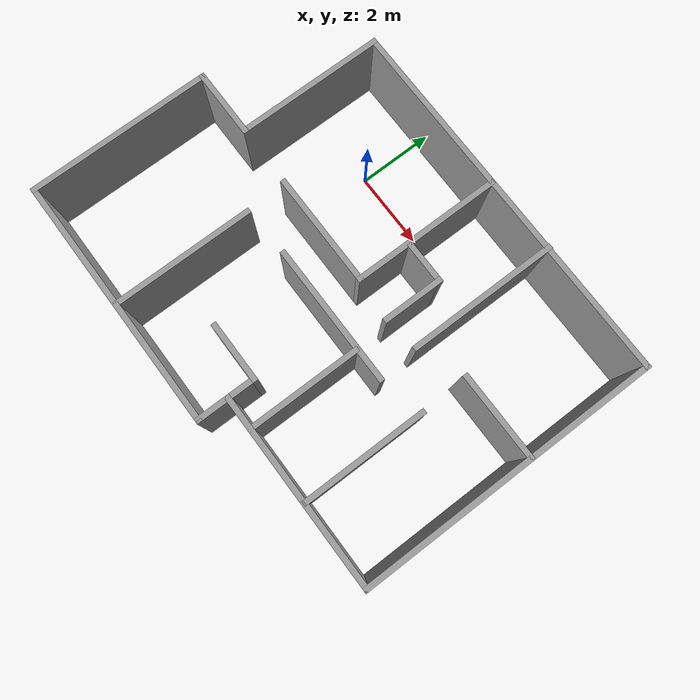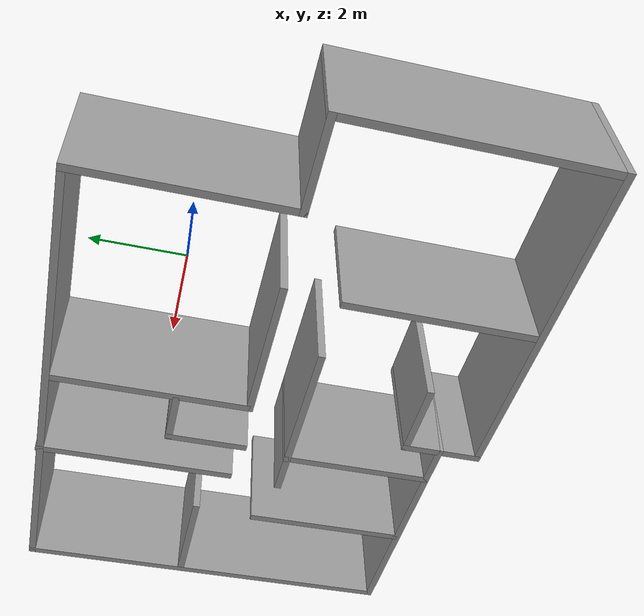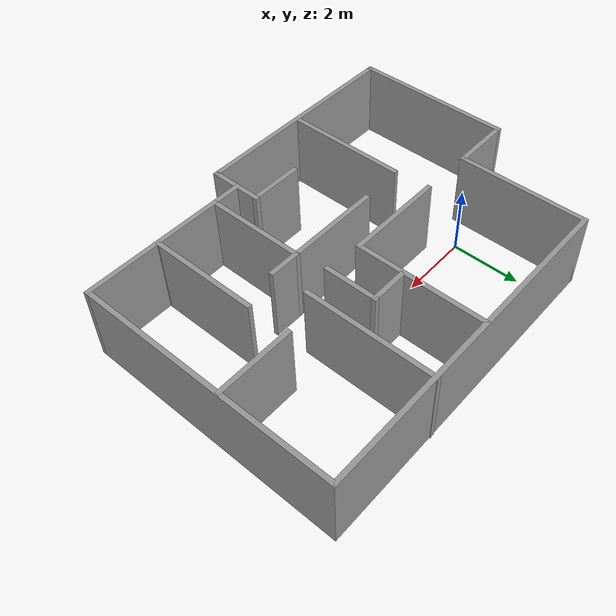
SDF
<?xml version='1.0'?>
<sdf version='1.7'>
  <model name='gazebo_floor_plan'>
    <pose>1.61942 -2.20808 -2 0 0 0</pose>
    <link name='Wall_0'>
      <collision name='Wall_0_Collision'>
        <geometry>
          <box>
            <size>7.25 0.15 2.5</size>
          </box>
        </geometry>
        <pose>0 0 1.25 0 -0 0</pose>
      </collision>
      <visual name='Wall_0_Visual'>
        <pose>0 0 1.25 0 -0 0</pose>
        <geometry>
          <box>
            <size>7.25 0.15 2.5</size>
          </box>
        </geometry>
        <material>
          <script>
            <uri>file://media/materials/scripts/gazebo.material</uri>
            <name>Gazebo/Grey</name>
          </script>
          <ambient>1 1 1 1</ambient>
        </material>
        <meta>
          <layer>0</layer>
        </meta>
      </visual>
      <pose>-2.675 -4.61213 0 0 -0 0</pose>
    </link>
    <link name='Wall_1'>
      <collision name='Wall_1_Collision'>
        <geometry>
          <box>
            <size>1.75 0.15 2.5</size>
          </box>
        </geometry>
        <pose>0 0 1.25 0 -0 0</pose>
      </collision>
      <visual name='Wall_1_Visual'>
        <pose>0 0 1.25 0 -0 0</pose>
        <geometry>
          <box>
            <size>1.75 0.15 2.5</size>
          </box>
        </geometry>
        <material>
          <script>
            <uri>file://media/materials/scripts/gazebo.material</uri>
            <name>Gazebo/Grey</name>
          </script>
          <ambient>1 1 1 1</ambient>
        </material>
        <meta>
          <layer>0</layer>
        </meta>
      </visual>
      <pose>0.875 -3.81213 0 0 -0 1.5708</pose>
    </link>
    <link name='Wall_10'>
      <collision name='Wall_10_Collision'>
        <geometry>
          <box>
            <size>8.5 0.15 2.5</size>
          </box>
        </geometry>
        <pose>0 0 1.25 0 -0 0</pose>
      </collision>
      <visual name='Wall_10_Visual'>
        <pose>0 0 1.25 0 -0 0</pose>
        <geometry>
          <box>
            <size>8.5 0.15 2.5</size>
          </box>
        </geometry>
        <material>
          <script>
            <uri>file://media/materials/scripts/gazebo.material</uri>
            <name>Gazebo/Grey</name>
          </script>
          <ambient>1 1 1 1</ambient>
        </material>
        <meta>
          <layer>0</layer>
        </meta>
      </visual>
      <pose>6.225 0.412866 0 0 -0 -1.5708</pose>
    </link>
    <link name='Wall_11'>
      <collision name='Wall_11_Collision'>
        <geometry>
          <box>
            <size>5.5 0.15 2.5</size>
          </box>
        </geometry>
        <pose>0 0 1.25 0 -0 0</pose>
      </collision>
      <visual name='Wall_11_Visual'>
        <pose>0 0 1.25 0 -0 0</pose>
        <geometry>
          <box>
            <size>5.5 0.15 2.5</size>
          </box>
        </geometry>
        <material>
          <script>
            <uri>file://media/materials/scripts/gazebo.material</uri>
            <name>Gazebo/Grey</name>
          </script>
          <ambient>1 1 1 1</ambient>
        </material>
        <meta>
          <layer>0</layer>
        </meta>
      </visual>
      <pose>3.55 -3.76213 0 0 -0 3.14159</pose>
    </link>
    <link name='Wall_13'>
      <collision name='Wall_13_Collision'>
        <geometry>
          <box>
            <size>4 0.15 2.5</size>
          </box>
        </geometry>
        <pose>0 0 1.25 0 -0 0</pose>
      </collision>
      <visual name='Wall_13_Visual'>
        <pose>0 0 1.25 0 -0 0</pose>
        <geometry>
          <box>
            <size>4 0.15 2.5</size>
          </box>
        </geometry>
        <material>
          <script>
            <uri>file://media/materials/scripts/gazebo.material</uri>
            <name>Gazebo/Grey</name>
          </script>
          <ambient>1 1 1 1</ambient>
        </material>
        <meta>
          <layer>0</layer>
        </meta>
      </visual>
      <pose>0.744232 -0.629502 0 0 -0 0</pose>
    </link>
    <link name='Wall_15'>
      <collision name='Wall_15_Collision'>
        <geometry>
          <box>
            <size>3.25 0.15 2.5</size>
          </box>
        </geometry>
        <pose>0 0 1.25 0 -0 0</pose>
      </collision>
      <visual name='Wall_15_Visual'>
        <pose>0 0 1.25 0 -0 0</pose>
        <geometry>
          <box>
            <size>3.25 0.15 2.5</size>
          </box>
        </geometry>
        <material>
          <script>
            <uri>file://media/materials/scripts/gazebo.material</uri>
            <name>Gazebo/Grey</name>
          </script>
          <ambient>1 1 1 1</ambient>
        </material>
        <meta>
          <layer>0</layer>
        </meta>
      </visual>
      <pose>1.77425 -2.1795 0 0 -0 -1.5708</pose>
    </link>
    <link name='Wall_17'>
      <collision name='Wall_17_Collision'>
        <geometry>
          <box>
            <size>3.25 0.15 2.5</size>
          </box>
        </geometry>
        <pose>0 0 1.25 0 -0 0</pose>
      </collision>
      <visual name='Wall_17_Visual'>
        <pose>0 0 1.25 0 -0 0</pose>
        <geometry>
          <box>
            <size>3.25 0.15 2.5</size>
          </box>
        </geometry>
        <material>
          <script>
            <uri>file://media/materials/scripts/gazebo.material</uri>
            <name>Gazebo/Grey</name>
          </script>
          <ambient>1 1 1 1</ambient>
        </material>
        <meta>
          <layer>0</layer>
        </meta>
      </visual>
      <pose>-1.10828 0.46104 0 0 -0 0</pose>
    </link>
    <link name='Wall_18'>
      <collision name='Wall_18_Collision'>
        <geometry>
          <box>
            <size>4.25 0.15 2.5</size>
          </box>
        </geometry>
        <pose>0 0 1.25 0 -0 0</pose>
      </collision>
      <visual name='Wall_18_Visual'>
        <pose>0 0 1.25 0 -0 0</pose>
        <geometry>
          <box>
            <size>4.25 0.15 2.5</size>
          </box>
        </geometry>
        <material>
          <script>
            <uri>file://media/materials/scripts/gazebo.material</uri>
            <name>Gazebo/Grey</name>
          </script>
          <ambient>1 1 1 1</ambient>
        </material>
        <meta>
          <layer>0</layer>
        </meta>
      </visual>
      <pose>0.441724 2.51104 0 0 -0 1.5708</pose>
    </link>
    <link name='Wall_2'>
      <collision name='Wall_2_Collision'>
        <geometry>
          <box>
            <size>1.75 0.15 2.5</size>
          </box>
        </geometry>
        <pose>0 0 1.25 0 -0 0</pose>
      </collision>
      <visual name='Wall_2_Visual'>
        <pose>0 0 1.25 0 -0 0</pose>
        <geometry>
          <box>
            <size>1.75 0.15 2.5</size>
          </box>
        </geometry>
        <material>
          <script>
            <uri>file://media/materials/scripts/gazebo.material</uri>
            <name>Gazebo/Grey</name>
          </script>
          <ambient>1 1 1 1</ambient>
        </material>
        <meta>
          <layer>0</layer>
        </meta>
      </visual>
      <pose>0.075 -3.01213 0 0 -0 3.14159</pose>
    </link>
    <link name='Wall_20'>
      <collision name='Wall_20_Collision'>
        <geometry>
          <box>
            <size>4.25 0.15 2.5</size>
          </box>
        </geometry>
        <pose>0 0 1.25 0 -0 0</pose>
      </collision>
      <visual name='Wall_20_Visual'>
        <pose>0 0 1.25 0 -0 0</pose>
        <geometry>
          <box>
            <size>4.25 0.15 2.5</size>
          </box>
        </geometry>
        <material>
          <script>
            <uri>file://media/materials/scripts/gazebo.material</uri>
            <name>Gazebo/Grey</name>
          </script>
          <ambient>1 1 1 1</ambient>
        </material>
        <meta>
          <layer>0</layer>
        </meta>
      </visual>
      <pose>2.58336 2.56213 0 0 -0 -1.5708</pose>
    </link>
    <link name='Wall_22'>
      <collision name='Wall_22_Collision'>
        <geometry>
          <box>
            <size>2.5 0.15 2.5</size>
          </box>
        </geometry>
        <pose>0 0 1.25 0 -0 0</pose>
      </collision>
      <visual name='Wall_22_Visual'>
        <pose>0 0 1.25 0 -0 0</pose>
        <geometry>
          <box>
            <size>2.5 0.15 2.5</size>
          </box>
        </geometry>
        <material>
          <script>
            <uri>file://media/materials/scripts/gazebo.material</uri>
            <name>Gazebo/Grey</name>
          </script>
          <ambient>1 1 1 1</ambient>
        </material>
        <meta>
          <layer>0</layer>
        </meta>
      </visual>
      <pose>5.0248 1.0239 0 0 -0 0</pose>
    </link>
    <link name='Wall_24'>
      <collision name='Wall_24_Collision'>
        <geometry>
          <box>
            <size>3.5 0.15 2.5</size>
          </box>
        </geometry>
        <pose>0 0 1.25 0 -0 0</pose>
      </collision>
      <visual name='Wall_24_Visual'>
        <pose>0 0 1.25 0 -0 0</pose>
        <geometry>
          <box>
            <size>3.5 0.15 2.5</size>
          </box>
        </geometry>
        <material>
          <script>
            <uri>file://media/materials/scripts/gazebo.material</uri>
            <name>Gazebo/Grey</name>
          </script>
          <ambient>1 1 1 1</ambient>
        </material>
        <meta>
          <layer>0</layer>
        </meta>
      </visual>
      <pose>3.88497 -2.00304 0 0 -0 -1.5708</pose>
    </link>
    <link name='Wall_26'>
      <collision name='Wall_26_Collision'>
        <geometry>
          <box>
            <size>0.15 0.15 2.5</size>
          </box>
        </geometry>
        <pose>0 0 1.25 0 -0 0</pose>
      </collision>
      <visual name='Wall_26_Visual'>
        <pose>0 0 1.25 0 -0 0</pose>
        <geometry>
          <box>
            <size>0.15 0.15 2.5</size>
          </box>
        </geometry>
        <material>
          <script>
            <uri>file://media/materials/scripts/gazebo.material</uri>
            <name>Gazebo/Grey</name>
          </script>
          <ambient>1 1 1 1</ambient>
        </material>
        <meta>
          <layer>0</layer>
        </meta>
      </visual>
      <pose>3.88497 -3.71827 0 0 -0 0</pose>
    </link>
    <link name='Wall_30'>
      <collision name='Wall_30_Collision'>
        <geometry>
          <box>
            <size>1.75 0.15 2.5</size>
          </box>
        </geometry>
        <pose>0 0 1.25 0 -0 0</pose>
      </collision>
      <visual name='Wall_30_Visual'>
        <pose>0 0 1.25 0 -0 0</pose>
        <geometry>
          <box>
            <size>1.75 0.15 2.5</size>
          </box>
        </geometry>
        <material>
          <script>
            <uri>file://media/materials/scripts/gazebo.material</uri>
            <name>Gazebo/Grey</name>
          </script>
          <ambient>1 1 1 1</ambient>
        </material>
        <meta>
          <layer>0</layer>
        </meta>
      </visual>
      <pose>1.62295 1.16471 0 0 -0 1.5708</pose>
    </link>
    <link name='Wall_31'>
      <collision name='Wall_31_Collision'>
        <geometry>
          <box>
            <size>1.25 0.15 2.5</size>
          </box>
        </geometry>
        <pose>0 0 1.25 0 -0 0</pose>
      </collision>
      <visual name='Wall_31_Visual'>
        <pose>0 0 1.25 0 -0 0</pose>
        <geometry>
          <box>
            <size>1.25 0.15 2.5</size>
          </box>
        </geometry>
        <material>
          <script>
            <uri>file://media/materials/scripts/gazebo.material</uri>
            <name>Gazebo/Grey</name>
          </script>
          <ambient>1 1 1 1</ambient>
        </material>
        <meta>
          <layer>0</layer>
        </meta>
      </visual>
      <pose>1.07295 1.96471 0 0 -0 3.14159</pose>
    </link>
    <link name='Wall_4'>
      <collision name='Wall_4_Collision'>
        <geometry>
          <box>
            <size>4 0.15 2.5</size>
          </box>
        </geometry>
        <pose>0 0 1.25 0 -0 0</pose>
      </collision>
      <visual name='Wall_4_Visual'>
        <pose>0 0 1.25 0 -0 0</pose>
        <geometry>
          <box>
            <size>4 0.15 2.5</size>
          </box>
        </geometry>
        <material>
          <script>
            <uri>file://media/materials/scripts/gazebo.material</uri>
            <name>Gazebo/Grey</name>
          </script>
          <ambient>1 1 1 1</ambient>
        </material>
        <meta>
          <layer>0</layer>
        </meta>
      </visual>
      <pose>-2.58444 -2.64691 0 0 -0 1.5708</pose>
    </link>
    <link name='Wall_6'>
      <collision name='Wall_6_Collision'>
        <geometry>
          <box>
            <size>5.25 0.15 2.5</size>
          </box>
        </geometry>
        <pose>0 0 1.25 0 -0 0</pose>
      </collision>
      <visual name='Wall_6_Visual'>
        <pose>0 0 1.25 0 -0 0</pose>
        <geometry>
          <box>
            <size>5.25 0.15 2.5</size>
          </box>
        </geometry>
        <material>
          <script>
            <uri>file://media/materials/scripts/gazebo.material</uri>
            <name>Gazebo/Grey</name>
          </script>
          <ambient>1 1 1 1</ambient>
        </material>
        <meta>
          <layer>0</layer>
        </meta>
      </visual>
      <pose>-6.225 -2.06213 0 0 -0 1.5708</pose>
    </link>
    <link name='Wall_7'>
      <collision name='Wall_7_Collision'>
        <geometry>
          <box>
            <size>2 0.15 2.5</size>
          </box>
        </geometry>
        <pose>0 0 1.25 0 -0 0</pose>
      </collision>
      <visual name='Wall_7_Visual'>
        <pose>0 0 1.25 0 -0 0</pose>
        <geometry>
          <box>
            <size>2 0.15 2.5</size>
          </box>
        </geometry>
        <material>
          <script>
            <uri>file://media/materials/scripts/gazebo.material</uri>
            <name>Gazebo/Grey</name>
          </script>
          <ambient>1 1 1 1</ambient>
        </material>
        <meta>
          <layer>0</layer>
        </meta>
      </visual>
      <pose>-5.3 0.487866 0 0 -0 0</pose>
    </link>
    <link name='Wall_8'>
      <collision name='Wall_8_Collision'>
        <geometry>
          <box>
            <size>4.25 0.15 2.5</size>
          </box>
        </geometry>
        <pose>0 0 1.25 0 -0 0</pose>
      </collision>
      <visual name='Wall_8_Visual'>
        <pose>0 0 1.25 0 -0 0</pose>
        <geometry>
          <box>
            <size>4.25 0.15 2.5</size>
          </box>
        </geometry>
        <material>
          <script>
            <uri>file://media/materials/scripts/gazebo.material</uri>
            <name>Gazebo/Grey</name>
          </script>
          <ambient>1 1 1 1</ambient>
        </material>
        <meta>
          <layer>0</layer>
        </meta>
      </visual>
      <pose>-4.375 2.53787 0 0 -0 1.5708</pose>
    </link>
    <link name='Wall_9'>
      <collision name='Wall_9_Collision'>
        <geometry>
          <box>
            <size>10.75 0.15 2.5</size>
          </box>
        </geometry>
        <pose>0 0 1.25 0 -0 0</pose>
      </collision>
      <visual name='Wall_9_Visual'>
        <pose>0 0 1.25 0 -0 0</pose>
        <geometry>
          <box>
            <size>10.75 0.15 2.5</size>
          </box>
        </geometry>
        <material>
          <script>
            <uri>file://media/materials/scripts/gazebo.material</uri>
            <name>Gazebo/Grey</name>
          </script>
          <ambient>1 1 1 1</ambient>
        </material>
        <meta>
          <layer>0</layer>
        </meta>
      </visual>
      <pose>0.925 4.58787 0 0 -0 0</pose>
    </link>
    <static>1</static>
  </model>
</sdf>
